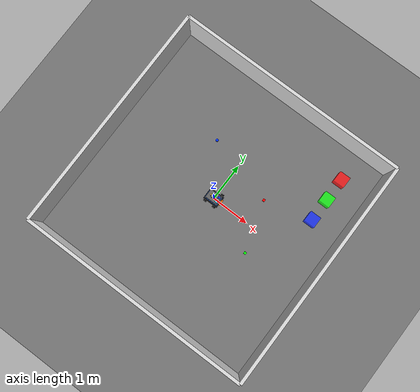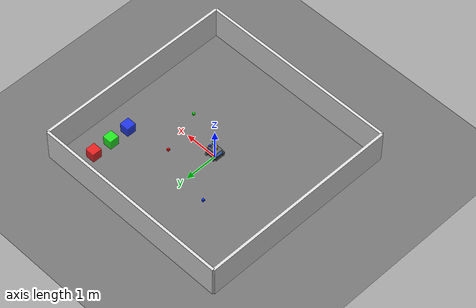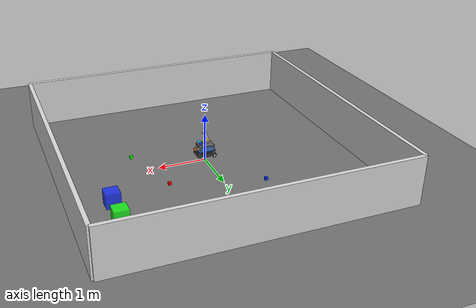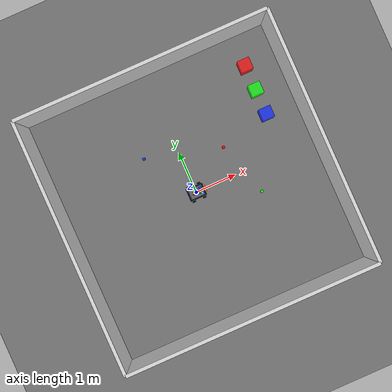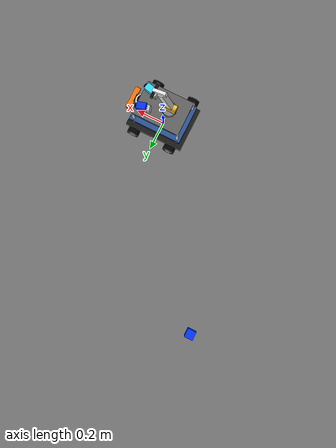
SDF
<?xml version="1.0" ?>
<sdf version="1.10">
  <world name="sorting_room">

    <plugin filename="gz-sim-physics-system"
            name="gz::sim::systems::Physics"/>
    <plugin filename="gz-sim-user-commands-system"
            name="gz::sim::systems::UserCommands"/>
    <plugin filename="gz-sim-scene-broadcaster-system"
            name="gz::sim::systems::SceneBroadcaster"/>
    <plugin filename="gz-sim-sensors-system"
            name="gz::sim::systems::Sensors">
      <render_engine>ogre2</render_engine>
    </plugin>
    <plugin filename="gz-sim-imu-system"
            name="gz::sim::systems::Imu"/>

    <gravity>0 0 -9.81</gravity>

    <scene>
      <ambient>0.45 0.45 0.45 1</ambient>
      <background>0.72 0.78 0.84 1</background>
      <shadows>true</shadows>
    </scene>

    <light name="sun" type="directional">
      <pose>0 0 8 0 0 0</pose>
      <diffuse>0.9 0.9 0.9 1</diffuse>
      <specular>0.2 0.2 0.2 1</specular>
      <direction>-0.5 0.2 -1</direction>
    </light>

    <model name="ground_plane">
      <static>true</static>
      <link name="link">
        <collision name="collision">
          <geometry>
            <plane>
              <normal>0 0 1</normal>
              <size>10 10</size>
            </plane>
          </geometry>
        </collision>

        <visual name="visual">
          <geometry>
            <plane>
              <normal>0 0 1</normal>
              <size>10 10</size>
            </plane>
          </geometry>
          <material>
            <ambient>0.45 0.45 0.45 1</ambient>
            <diffuse>0.45 0.45 0.45 1</diffuse>
          </material>
        </visual>
      </link>
    </model>

    <model name="room_walls">
      <static>true</static>

      <link name="wall_north">
        <pose>0 3.0 0.5 0 0 0</pose>
        <collision name="collision">
          <geometry><box><size>6.0 0.08 1.0</size></box></geometry>
        </collision>
        <visual name="visual">
          <geometry><box><size>6.0 0.08 1.0</size></box></geometry>
          <material><diffuse>0.85 0.85 0.85 1</diffuse></material>
        </visual>
      </link>

      <link name="wall_south">
        <pose>0 -3.0 0.5 0 0 0</pose>
        <collision name="collision">
          <geometry><box><size>6.0 0.08 1.0</size></box></geometry>
        </collision>
        <visual name="visual">
          <geometry><box><size>6.0 0.08 1.0</size></box></geometry>
          <material><diffuse>0.85 0.85 0.85 1</diffuse></material>
        </visual>
      </link>

      <link name="wall_east">
        <pose>3.0 0 0.5 0 0 0</pose>
        <collision name="collision">
          <geometry><box><size>0.08 6.0 1.0</size></box></geometry>
        </collision>
        <visual name="visual">
          <geometry><box><size>0.08 6.0 1.0</size></box></geometry>
          <material><diffuse>0.85 0.85 0.85 1</diffuse></material>
        </visual>
      </link>

      <link name="wall_west">
        <pose>-3.0 0 0.5 0 0 0</pose>
        <collision name="collision">
          <geometry><box><size>0.08 6.0 1.0</size></box></geometry>
        </collision>
        <visual name="visual">
          <geometry><box><size>0.08 6.0 1.0</size></box></geometry>
          <material><diffuse>0.85 0.85 0.85 1</diffuse></material>
        </visual>
      </link>
    </model>

    <include>
      <uri>model://mobile_sorting_robot</uri>
      <pose>0 0 0.12 0 0 0</pose>
    </include>

    <include>
      <uri>model://red_block</uri>
      <pose>1.0 0.7 0.03 0 0 0</pose>
    </include>

    <include>
      <uri>model://green_block</uri>
      <pose>1.4 -0.6 0.03 0 0 0</pose>
    </include>

    <include>
      <uri>model://blue_block</uri>
      <pose>-0.8 1.2 0.03 0 0 0</pose>
    </include>

    <include>
      <uri>model://red_bin</uri>
      <pose>2.2 2.2 0.15 0 0 0</pose>
    </include>

    <include>
      <uri>model://green_bin</uri>
      <pose>2.2 1.6 0.15 0 0 0</pose>
    </include>

    <include>
      <uri>model://blue_bin</uri>
      <pose>2.2 1.0 0.15 0 0 0</pose>
    </include>

  </world>
</sdf>

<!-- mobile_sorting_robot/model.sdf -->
<sdf version="1.10">
  <model name="mobile_sorting_robot">

    <!-- Motion controller: temporary differential drive for Day 1 -->
    <plugin filename="gz-sim-diff-drive-system"
            name="gz::sim::systems::DiffDrive">
      <left_joint>front_left_wheel_joint</left_joint>
      <left_joint>rear_left_wheel_joint</left_joint>
      <right_joint>front_right_wheel_joint</right_joint>
      <right_joint>rear_right_wheel_joint</right_joint>

      <wheel_separation>0.30</wheel_separation>
      <wheel_radius>0.04</wheel_radius>

      <odom_publish_frequency>50</odom_publish_frequency>
      <topic>/model/mobile_sorting_robot/cmd_vel</topic>
      <odom_topic>/model/mobile_sorting_robot/odometry</odom_topic>
      <tf_topic>/model/mobile_sorting_robot/tf</tf_topic>

      <frame_id>odom</frame_id>
      <child_frame_id>base_link</child_frame_id>
    </plugin>

    <!-- Base link: three-layer chassis + visible IMU + IMU sensor -->
    <link name="base_link">
      <pose>0 0 0 0 0 0</pose>

      <inertial>
        <mass>4.0</mass>
        <inertia>
          <ixx>0.030</ixx>
          <iyy>0.045</iyy>
          <izz>0.055</izz>
          <ixy>0</ixy>
          <ixz>0</ixz>
          <iyz>0</iyz>
        </inertia>
      </inertial>

      <!-- Simple collision envelope for the whole chassis -->
      <collision name="base_collision">
        <pose>0 0 0.08 0 0 0</pose>
        <geometry>
          <box>
            <size>0.40 0.30 0.16</size>
          </box>
        </geometry>
      </collision>

      <!-- Bottom deck: lower hardware layer -->
      <visual name="bottom_deck">
        <pose>0 0 0.025 0 0 0</pose>
        <geometry>
          <box>
            <size>0.40 0.30 0.025</size>
          </box>
        </geometry>
        <material>
          <ambient>0.10 0.10 0.10 1</ambient>
          <diffuse>0.10 0.10 0.10 1</diffuse>
        </material>
      </visual>

      <!-- Middle deck: LiDAR support layer -->
      <visual name="middle_deck">
        <pose>0 0 0.120 0 0 0</pose>
        <geometry>
          <box>
            <size>0.36 0.26 0.022</size>
          </box>
        </geometry>
        <material>
          <ambient>0.16 0.32 0.58 1</ambient>
          <diffuse>0.16 0.32 0.58 1</diffuse>
        </material>
      </visual>

      <!-- Top deck: dual cameras + arm layer -->
      <visual name="top_deck">
        <pose>0 0 0.230 0 0 0</pose>
        <geometry>
          <box>
            <size>0.32 0.23 0.020</size>
          </box>
        </geometry>
        <material>
          <ambient>0.38 0.38 0.38 1</ambient>
          <diffuse>0.38 0.38 0.38 1</diffuse>
        </material>
      </visual>

      <!-- Four metal standoffs -->
      <visual name="front_left_standoff">
        <pose>0.155 0.110 0.125 0 0 0</pose>
        <geometry>
          <cylinder>
            <radius>0.010</radius>
            <length>0.210</length>
          </cylinder>
        </geometry>
        <material>
          <ambient>0.82 0.82 0.82 1</ambient>
          <diffuse>0.82 0.82 0.82 1</diffuse>
        </material>
      </visual>

      <visual name="front_right_standoff">
        <pose>0.155 -0.110 0.125 0 0 0</pose>
        <geometry>
          <cylinder>
            <radius>0.010</radius>
            <length>0.210</length>
          </cylinder>
        </geometry>
        <material>
          <ambient>0.82 0.82 0.82 1</ambient>
          <diffuse>0.82 0.82 0.82 1</diffuse>
        </material>
      </visual>

      <visual name="rear_left_standoff">
        <pose>-0.155 0.110 0.125 0 0 0</pose>
        <geometry>
          <cylinder>
            <radius>0.010</radius>
            <length>0.210</length>
          </cylinder>
        </geometry>
        <material>
          <ambient>0.82 0.82 0.82 1</ambient>
          <diffuse>0.82 0.82 0.82 1</diffuse>
        </material>
      </visual>

      <visual name="rear_right_standoff">
        <pose>-0.155 -0.110 0.125 0 0 0</pose>
        <geometry>
          <cylinder>
            <radius>0.010</radius>
            <length>0.210</length>
          </cylinder>
        </geometry>
        <material>
          <ambient>0.82 0.82 0.82 1</ambient>
          <diffuse>0.82 0.82 0.82 1</diffuse>
        </material>
      </visual>

      <!-- Visible IMU module on bottom layer -->
      <visual name="imu_board_visual">
        <pose>0.045 0 0.058 0 0 0</pose>
        <geometry>
          <box>
            <size>0.075 0.055 0.014</size>
          </box>
        </geometry>
        <material>
          <ambient>0.45 0.12 0.85 1</ambient>
          <diffuse>0.45 0.12 0.85 1</diffuse>
        </material>
      </visual>

      <visual name="imu_chip_visual">
        <pose>0.045 0 0.068 0 0 0</pose>
        <geometry>
          <box>
            <size>0.026 0.026 0.006</size>
          </box>
        </geometry>
        <material>
          <ambient>0.02 0.02 0.02 1</ambient>
          <diffuse>0.02 0.02 0.02 1</diffuse>
        </material>
      </visual>

      <visual name="imu_axis_x_visual">
        <pose>0.082 0 0.075 0 0 0</pose>
        <geometry>
          <box>
            <size>0.030 0.006 0.006</size>
          </box>
        </geometry>
        <material>
          <ambient>1.00 0.05 0.05 1</ambient>
          <diffuse>1.00 0.05 0.05 1</diffuse>
        </material>
      </visual>

      <visual name="imu_axis_y_visual">
        <pose>0.045 0.030 0.075 0 0 0</pose>
        <geometry>
          <box>
            <size>0.006 0.030 0.006</size>
          </box>
        </geometry>
        <material>
          <ambient>0.05 1.00 0.05 1</ambient>
          <diffuse>0.05 1.00 0.05 1</diffuse>
        </material>
      </visual>

      <!-- Front direction marker: +X -->
      <visual name="front_marker">
        <pose>0.215 0 0.145 0 0 0</pose>
        <geometry>
          <box>
            <size>0.035 0.15 0.014</size>
          </box>
        </geometry>
        <material>
          <ambient>1.00 0.45 0.02 1</ambient>
          <diffuse>1.00 0.45 0.02 1</diffuse>
        </material>
      </visual>

      <!-- IMU data source -->
      <sensor name="imu_sensor" type="imu">
        <always_on>true</always_on>
        <update_rate>100</update_rate>
        <topic>/model/mobile_sorting_robot/imu</topic>
      </sensor>
    </link>

    <!-- YDLIDAR X3-like 2D lidar on middle deck, pushed forward  -->
    <link name="lidar_link">
      <!-- x=0.145 makes the lidar clearly forward; slightly protrudes from the deck -->
      <pose>0.145 0 0.170 0 0 0</pose>

      <inertial>
        <mass>0.18</mass>
        <inertia>
          <ixx>0.00025</ixx>
          <iyy>0.00025</iyy>
          <izz>0.00025</izz>
          <ixy>0</ixy>
          <ixz>0</ixz>
          <iyz>0</iyz>
        </inertia>
      </inertial>

      <visual name="lidar_black_base">
        <pose>0 0 -0.020 0 0 0</pose>
        <geometry>
          <cylinder>
            <radius>0.058</radius>
            <length>0.018</length>
          </cylinder>
        </geometry>
        <material>
          <ambient>0.03 0.03 0.03 1</ambient>
          <diffuse>0.03 0.03 0.03 1</diffuse>
        </material>
      </visual>

      <visual name="lidar_white_body">
        <pose>0 0 0.000 0 0 0</pose>
        <geometry>
          <cylinder>
            <radius>0.047</radius>
            <length>0.032</length>
          </cylinder>
        </geometry>
        <material>
          <ambient>0.88 0.88 0.82 1</ambient>
          <diffuse>0.88 0.88 0.82 1</diffuse>
        </material>
      </visual>

      <visual name="lidar_black_top">
        <pose>0 0 0.022 0 0 0</pose>
        <geometry>
          <cylinder>
            <radius>0.036</radius>
            <length>0.010</length>
          </cylinder>
        </geometry>
        <material>
          <ambient>0.01 0.01 0.01 1</ambient>
          <diffuse>0.01 0.01 0.01 1</diffuse>
        </material>
      </visual>

      <visual name="lidar_front_window">
        <pose>0.047 0 0.004 0 1.5708 0</pose>
        <geometry>
          <box>
            <size>0.012 0.050 0.014</size>
          </box>
        </geometry>
        <material>
          <ambient>0.00 0.00 0.00 1</ambient>
          <diffuse>0.00 0.00 0.00 1</diffuse>
        </material>
      </visual>

      <collision name="lidar_collision">
        <geometry>
          <cylinder>
            <radius>0.058</radius>
            <length>0.060</length>
          </cylinder>
        </geometry>
      </collision>

      <sensor name="gpu_lidar" type="gpu_lidar">
        <always_on>true</always_on>
        <visualize>true</visualize>
        <update_rate>10</update_rate>
        <topic>/model/mobile_sorting_robot/scan</topic>

        <ray>
          <scan>
            <horizontal>
              <samples>720</samples>
              <resolution>1</resolution>
              <min_angle>-3.1415926</min_angle>
              <max_angle>3.1415926</max_angle>
            </horizontal>
          </scan>
          <range>
            <min>0.12</min>
            <max>8.0</max>
            <resolution>0.01</resolution>
          </range>
        </ray>
      </sensor>
    </link>

    <joint name="lidar_joint" type="fixed">
      <parent>base_link</parent>
      <child>lidar_link</child>
    </joint>

    <!-- Left RGB camera above lidar, angled outward              -->
    <link name="left_rgb_camera_link">
      <pose>0.115 0.060 0.285 0 0.18 0.25</pose>

      <inertial>
        <mass>0.05</mass>
        <inertia>
          <ixx>0.0001</ixx>
          <iyy>0.0001</iyy>
          <izz>0.0001</izz>
          <ixy>0</ixy>
          <ixz>0</ixz>
          <iyz>0</iyz>
        </inertia>
      </inertial>

      <visual name="left_camera_body">
        <geometry>
          <box>
            <size>0.060 0.045 0.036</size>
          </box>
        </geometry>
        <material>
          <ambient>0.05 0.20 0.95 1</ambient>
          <diffuse>0.05 0.20 0.95 1</diffuse>
        </material>
      </visual>

      <visual name="left_camera_lens">
        <pose>0.036 0 0 0 1.5708 0</pose>
        <geometry>
          <cylinder>
            <radius>0.015</radius>
            <length>0.015</length>
          </cylinder>
        </geometry>
        <material>
          <ambient>0 0 0 1</ambient>
          <diffuse>0 0 0 1</diffuse>
        </material>
      </visual>

      <visual name="left_camera_mount">
        <pose>-0.034 0 -0.040 0 0 0</pose>
        <geometry>
          <box>
            <size>0.030 0.038 0.055</size>
          </box>
        </geometry>
        <material>
          <ambient>0.78 0.78 0.78 1</ambient>
          <diffuse>0.78 0.78 0.78 1</diffuse>
        </material>
      </visual>

      <collision name="left_camera_collision">
        <geometry>
          <box>
            <size>0.060 0.045 0.036</size>
          </box>
        </geometry>
      </collision>

      <sensor name="left_rgb_camera" type="camera">
        <always_on>true</always_on>
        <visualize>true</visualize>
        <update_rate>30</update_rate>
        <topic>/model/mobile_sorting_robot/left_camera</topic>
        <camera>
          <horizontal_fov>1.3962634</horizontal_fov>
          <image>
            <width>640</width>
            <height>480</height>
            <format>R8G8B8</format>
          </image>
          <clip>
            <near>0.05</near>
            <far>20.0</far>
          </clip>
        </camera>
      </sensor>
    </link>

    <joint name="left_rgb_camera_joint" type="fixed">
      <parent>base_link</parent>
      <child>left_rgb_camera_link</child>
    </joint>

    <!-- Right RGB camera above lidar, angled outward             -->
    <link name="right_rgb_camera_link">
      <pose>0.115 -0.060 0.285 0 0.18 -0.25</pose>

      <inertial>
        <mass>0.05</mass>
        <inertia>
          <ixx>0.0001</ixx>
          <iyy>0.0001</iyy>
          <izz>0.0001</izz>
          <ixy>0</ixy>
          <ixz>0</ixz>
          <iyz>0</iyz>
        </inertia>
      </inertial>

      <visual name="right_camera_body">
        <geometry>
          <box>
            <size>0.060 0.045 0.036</size>
          </box>
        </geometry>
        <material>
          <ambient>0.20 0.85 1.00 1</ambient>
          <diffuse>0.20 0.85 1.00 1</diffuse>
        </material>
      </visual>

      <visual name="right_camera_lens">
        <pose>0.036 0 0 0 1.5708 0</pose>
        <geometry>
          <cylinder>
            <radius>0.015</radius>
            <length>0.015</length>
          </cylinder>
        </geometry>
        <material>
          <ambient>0 0 0 1</ambient>
          <diffuse>0 0 0 1</diffuse>
        </material>
      </visual>

      <visual name="right_camera_mount">
        <pose>-0.034 0 -0.040 0 0 0</pose>
        <geometry>
          <box>
            <size>0.030 0.038 0.055</size>
          </box>
        </geometry>
        <material>
          <ambient>0.78 0.78 0.78 1</ambient>
          <diffuse>0.78 0.78 0.78 1</diffuse>
        </material>
      </visual>

      <collision name="right_camera_collision">
        <geometry>
          <box>
            <size>0.060 0.045 0.036</size>
          </box>
        </geometry>
      </collision>

      <sensor name="right_rgb_camera" type="camera">
        <always_on>true</always_on>
        <visualize>true</visualize>
        <update_rate>30</update_rate>
        <topic>/model/mobile_sorting_robot/right_camera</topic>
        <camera>
          <horizontal_fov>1.3962634</horizontal_fov>
          <image>
            <width>640</width>
            <height>480</height>
            <format>R8G8B8</format>
          </image>
          <clip>
            <near>0.05</near>
            <far>20.0</far>
          </clip>
        </camera>
      </sensor>
    </link>

    <joint name="right_rgb_camera_joint" type="fixed">
      <parent>base_link</parent>
      <child>right_rgb_camera_link</child>
    </joint>

    <!-- Arm placeholder: visible centered manipulator             -->
    <link name="arm_base_link">
      <pose>-0.045 0 0.275 0 0 0</pose>

      <inertial>
        <mass>0.5</mass>
        <inertia>
          <ixx>0.001</ixx>
          <iyy>0.001</iyy>
          <izz>0.001</izz>
          <ixy>0</ixy>
          <ixz>0</ixz>
          <iyz>0</iyz>
        </inertia>
      </inertial>

      <visual name="arm_base">
        <geometry>
          <cylinder>
            <radius>0.045</radius>
            <length>0.030</length>
          </cylinder>
        </geometry>
        <material>
          <ambient>0.50 0.50 0.50 1</ambient>
          <diffuse>0.50 0.50 0.50 1</diffuse>
        </material>
      </visual>

      <visual name="arm_servo">
        <pose>0 0 0.055 0 1.5708 0</pose>
        <geometry>
          <cylinder>
            <radius>0.026</radius>
            <length>0.095</length>
          </cylinder>
        </geometry>
        <material>
          <ambient>0.95 0.72 0.20 1</ambient>
          <diffuse>0.95 0.72 0.20 1</diffuse>
        </material>
      </visual>

      <visual name="arm_upper_link">
        <pose>0.020 0 0.145 0 0.35 0</pose>
        <geometry>
          <box>
            <size>0.036 0.036 0.180</size>
          </box>
        </geometry>
        <material>
          <ambient>0.85 0.85 0.85 1</ambient>
          <diffuse>0.85 0.85 0.85 1</diffuse>
        </material>
      </visual>

      <visual name="gripper_bar">
        <pose>0.060 0 0.240 0 0.35 0</pose>
        <geometry>
          <box>
            <size>0.090 0.020 0.026</size>
          </box>
        </geometry>
        <material>
          <ambient>0.95 0.95 0.95 1</ambient>
          <diffuse>0.95 0.95 0.95 1</diffuse>
        </material>
      </visual>

      <visual name="left_gripper_finger">
        <pose>0.095 0.025 0.225 0 0.35 0</pose>
        <geometry>
          <box>
            <size>0.014 0.045 0.014</size>
          </box>
        </geometry>
        <material>
          <ambient>0.02 0.02 0.02 1</ambient>
          <diffuse>0.02 0.02 0.02 1</diffuse>
        </material>
      </visual>

      <visual name="right_gripper_finger">
        <pose>0.095 -0.025 0.225 0 0.35 0</pose>
        <geometry>
          <box>
            <size>0.014 0.045 0.014</size>
          </box>
        </geometry>
        <material>
          <ambient>0.02 0.02 0.02 1</ambient>
          <diffuse>0.02 0.02 0.02 1</diffuse>
        </material>
      </visual>
    </link>

    <joint name="arm_base_joint" type="fixed">
      <parent>base_link</parent>
      <child>arm_base_link</child>
    </joint>

    <!-- Four 80mm wheels                                         -->
    <link name="front_left_wheel">
      <pose>0.130 0.175 0.040 1.57079632679 0 0</pose>
      <inertial>
        <mass>0.25</mass>
        <inertia>
          <ixx>0.00013</ixx>
          <iyy>0.00013</iyy>
          <izz>0.00020</izz>
          <ixy>0</ixy>
          <ixz>0</ixz>
          <iyz>0</iyz>
        </inertia>
      </inertial>
      <collision name="collision">
        <geometry>
          <cylinder>
            <radius>0.04</radius>
            <length>0.040</length>
          </cylinder>
        </geometry>
      </collision>
      <visual name="tire">
        <geometry>
          <cylinder>
            <radius>0.04</radius>
            <length>0.040</length>
          </cylinder>
        </geometry>
        <material>
          <ambient>0.01 0.01 0.01 1</ambient>
          <diffuse>0.01 0.01 0.01 1</diffuse>
        </material>
      </visual>
      <visual name="hub">
        <geometry>
          <cylinder>
            <radius>0.023</radius>
            <length>0.044</length>
          </cylinder>
        </geometry>
        <material>
          <ambient>0.80 0.80 0.80 1</ambient>
          <diffuse>0.80 0.80 0.80 1</diffuse>
        </material>
      </visual>
    </link>

    <link name="rear_left_wheel">
      <pose>-0.130 0.175 0.040 1.57079632679 0 0</pose>
      <inertial>
        <mass>0.25</mass>
        <inertia>
          <ixx>0.00013</ixx>
          <iyy>0.00013</iyy>
          <izz>0.00020</izz>
          <ixy>0</ixy>
          <ixz>0</ixz>
          <iyz>0</iyz>
        </inertia>
      </inertial>
      <collision name="collision">
        <geometry>
          <cylinder>
            <radius>0.04</radius>
            <length>0.040</length>
          </cylinder>
        </geometry>
      </collision>
      <visual name="tire">
        <geometry>
          <cylinder>
            <radius>0.04</radius>
            <length>0.040</length>
          </cylinder>
        </geometry>
        <material>
          <ambient>0.01 0.01 0.01 1</ambient>
          <diffuse>0.01 0.01 0.01 1</diffuse>
        </material>
      </visual>
      <visual name="hub">
        <geometry>
          <cylinder>
            <radius>0.023</radius>
            <length>0.044</length>
          </cylinder>
        </geometry>
        <material>
          <ambient>0.80 0.80 0.80 1</ambient>
          <diffuse>0.80 0.80 0.80 1</diffuse>
        </material>
      </visual>
    </link>

    <link name="front_right_wheel">
      <pose>0.130 -0.175 0.040 1.57079632679 0 0</pose>
      <inertial>
        <mass>0.25</mass>
        <inertia>
          <ixx>0.00013</ixx>
          <iyy>0.00013</iyy>
          <izz>0.00020</izz>
          <ixy>0</ixy>
          <ixz>0</ixz>
          <iyz>0</iyz>
        </inertia>
      </inertial>
      <collision name="collision">
        <geometry>
          <cylinder>
            <radius>0.04</radius>
            <length>0.040</length>
          </cylinder>
        </geometry>
      </collision>
      <visual name="tire">
        <geometry>
          <cylinder>
            <radius>0.04</radius>
            <length>0.040</length>
          </cylinder>
        </geometry>
        <material>
          <ambient>0.01 0.01 0.01 1</ambient>
          <diffuse>0.01 0.01 0.01 1</diffuse>
        </material>
      </visual>
      <visual name="hub">
        <geometry>
          <cylinder>
            <radius>0.023</radius>
            <length>0.044</length>
          </cylinder>
        </geometry>
        <material>
          <ambient>0.80 0.80 0.80 1</ambient>
          <diffuse>0.80 0.80 0.80 1</diffuse>
        </material>
      </visual>
    </link>

    <link name="rear_right_wheel">
      <pose>-0.130 -0.175 0.040 1.57079632679 0 0</pose>
      <inertial>
        <mass>0.25</mass>
        <inertia>
          <ixx>0.00013</ixx>
          <iyy>0.00013</iyy>
          <izz>0.00020</izz>
          <ixy>0</ixy>
          <ixz>0</ixz>
          <iyz>0</iyz>
        </inertia>
      </inertial>
      <collision name="collision">
        <geometry>
          <cylinder>
            <radius>0.04</radius>
            <length>0.040</length>
          </cylinder>
        </geometry>
      </collision>
      <visual name="tire">
        <geometry>
          <cylinder>
            <radius>0.04</radius>
            <length>0.040</length>
          </cylinder>
        </geometry>
        <material>
          <ambient>0.01 0.01 0.01 1</ambient>
          <diffuse>0.01 0.01 0.01 1</diffuse>
        </material>
      </visual>
      <visual name="hub">
        <geometry>
          <cylinder>
            <radius>0.023</radius>
            <length>0.044</length>
          </cylinder>
        </geometry>
        <material>
          <ambient>0.80 0.80 0.80 1</ambient>
          <diffuse>0.80 0.80 0.80 1</diffuse>
        </material>
      </visual>
    </link>

    <joint name="front_left_wheel_joint" type="revolute">
      <parent>base_link</parent>
      <child>front_left_wheel</child>
      <axis>
        <xyz>0 0 1</xyz>
        <limit>
          <lower>-1e16</lower>
          <upper>1e16</upper>
        </limit>
      </axis>
    </joint>

    <joint name="rear_left_wheel_joint" type="revolute">
      <parent>base_link</parent>
      <child>rear_left_wheel</child>
      <axis>
        <xyz>0 0 1</xyz>
        <limit>
          <lower>-1e16</lower>
          <upper>1e16</upper>
        </limit>
      </axis>
    </joint>

    <joint name="front_right_wheel_joint" type="revolute">
      <parent>base_link</parent>
      <child>front_right_wheel</child>
      <axis>
        <xyz>0 0 1</xyz>
        <limit>
          <lower>-1e16</lower>
          <upper>1e16</upper>
        </limit>
      </axis>
    </joint>

    <joint name="rear_right_wheel_joint" type="revolute">
      <parent>base_link</parent>
      <child>rear_right_wheel</child>
      <axis>
        <xyz>0 0 1</xyz>
        <limit>
          <lower>-1e16</lower>
          <upper>1e16</upper>
        </limit>
      </axis>
    </joint>

  </model>
</sdf>

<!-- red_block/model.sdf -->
<sdf version="1.10">
  <model name="red_block">
    <static>false</static>
    <link name="link">
      <inertial>
        <mass>0.03</mass>
        <inertia>
          <ixx>0.00001</ixx>
          <iyy>0.00001</iyy>
          <izz>0.00001</izz>
        </inertia>
      </inertial>

      <collision name="collision">
        <geometry>
          <box>
            <size>0.06 0.06 0.06</size>
          </box>
        </geometry>
      </collision>

      <visual name="visual">
        <geometry>
          <box>
            <size>0.06 0.06 0.06</size>
          </box>
        </geometry>
        <material>
          <ambient>1 0 0 1</ambient>
          <diffuse>1 0 0 1</diffuse>
        </material>
      </visual>
    </link>
  </model>
</sdf>

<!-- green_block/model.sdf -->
<sdf version="1.10">
  <model name="green_block">
    <static>false</static>
    <link name="link">
      <inertial>
        <mass>0.03</mass>
        <inertia>
          <ixx>0.00001</ixx>
          <iyy>0.00001</iyy>
          <izz>0.00001</izz>
        </inertia>
      </inertial>

      <collision name="collision">
        <geometry>
          <box>
            <size>0.06 0.06 0.06</size>
          </box>
        </geometry>
      </collision>

      <visual name="visual">
        <geometry>
          <box>
            <size>0.06 0.06 0.06</size>
          </box>
        </geometry>
        <material>
          <ambient>0 1 0 1</ambient>
          <diffuse>0 1 0 1</diffuse>
        </material>
      </visual>
    </link>
  </model>
</sdf>

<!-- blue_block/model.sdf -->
<sdf version="1.10">
  <model name="blue_block">
    <static>false</static>
    <link name="link">
      <inertial>
        <mass>0.03</mass>
        <inertia>
          <ixx>0.00001</ixx>
          <iyy>0.00001</iyy>
          <izz>0.00001</izz>
        </inertia>
      </inertial>

      <collision name="collision">
        <geometry>
          <box>
            <size>0.06 0.06 0.06</size>
          </box>
        </geometry>
      </collision>

      <visual name="visual">
        <geometry>
          <box>
            <size>0.06 0.06 0.06</size>
          </box>
        </geometry>
        <material>
          <ambient>0 0.2 1 1</ambient>
          <diffuse>0 0.2 1 1</diffuse>
        </material>
      </visual>
    </link>
  </model>
</sdf>

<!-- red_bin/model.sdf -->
<sdf version="1.10">
  <model name="red_bin">
    <static>true</static>
    <link name="link">
      <collision name="collision">
        <geometry>
          <box>
            <size>0.28 0.28 0.30</size>
          </box>
        </geometry>
      </collision>

      <visual name="visual">
        <geometry>
          <box>
            <size>0.28 0.28 0.30</size>
          </box>
        </geometry>
        <material>
          <ambient>1 0.1 0.1 0.85</ambient>
          <diffuse>1 0.1 0.1 0.85</diffuse>
        </material>
      </visual>
    </link>
  </model>
</sdf>

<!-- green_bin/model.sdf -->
<sdf version="1.10">
  <model name="green_bin">
    <static>true</static>
    <link name="link">
      <collision name="collision">
        <geometry>
          <box>
            <size>0.28 0.28 0.30</size>
          </box>
        </geometry>
      </collision>

      <visual name="visual">
        <geometry>
          <box>
            <size>0.28 0.28 0.30</size>
          </box>
        </geometry>
        <material>
          <ambient>0.1 1 0.1 0.85</ambient>
          <diffuse>0.1 1 0.1 0.85</diffuse>
        </material>
      </visual>
    </link>
  </model>
</sdf>

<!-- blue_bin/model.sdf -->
<sdf version="1.10">
  <model name="blue_bin">
    <static>true</static>
    <link name="link">
      <collision name="collision">
        <geometry>
          <box>
            <size>0.28 0.28 0.30</size>
          </box>
        </geometry>
      </collision>

      <visual name="visual">
        <geometry>
          <box>
            <size>0.28 0.28 0.30</size>
          </box>
        </geometry>
        <material>
          <ambient>0.1 0.2 1 0.85</ambient>
          <diffuse>0.1 0.2 1 0.85</diffuse>
        </material>
      </visual>
    </link>
  </model>
</sdf>
